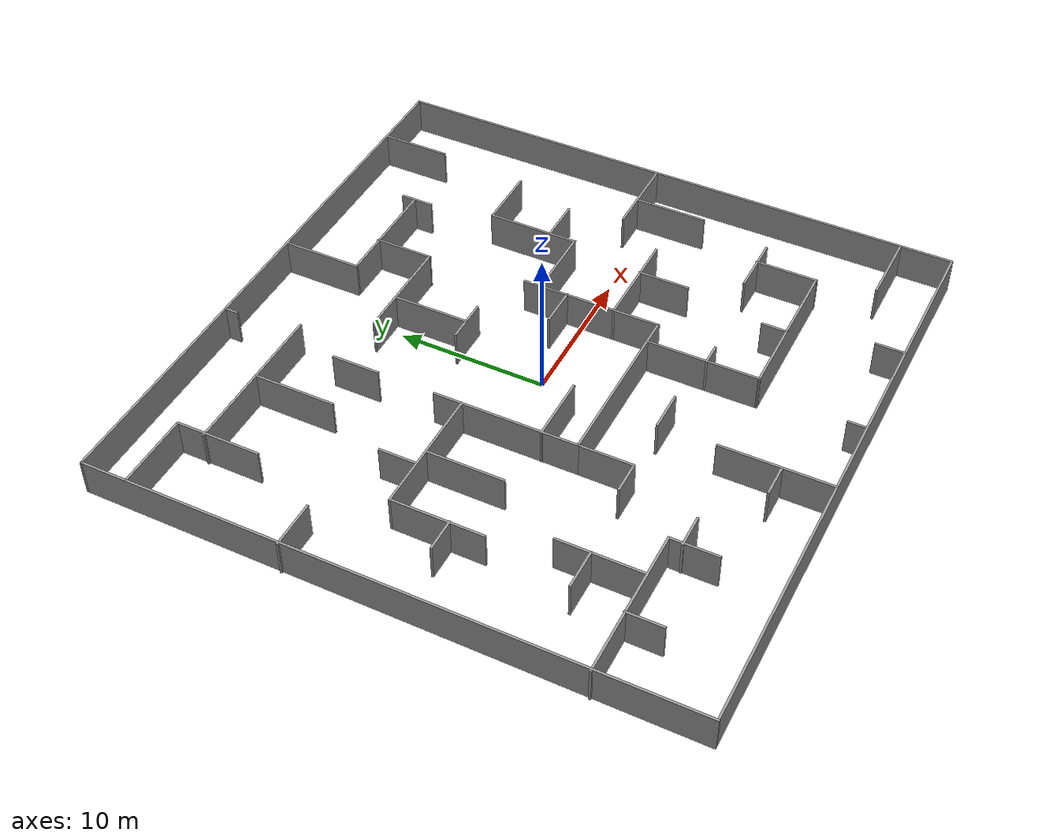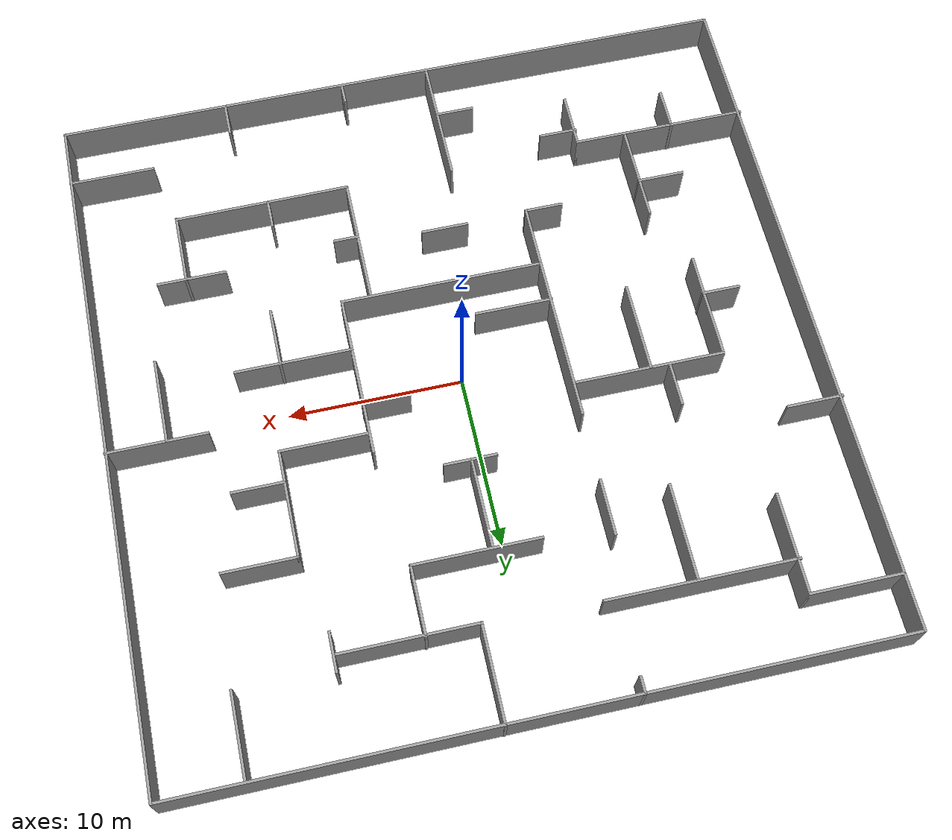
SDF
<sdf version="1.7">
 <world name="default">
  <model name="Big_Maze">
   <link name="Wall_0">
    <collision name="Wall_0_Collision">
     <geometry><box><size>40 0.15 2.5</size></box></geometry>
     <pose>0 0 1.25 0 -0 0</pose>
    </collision>
    <visual name="Wall_0_Visual">
     <pose>0 0 1.25 0 -0 0</pose>
     <geometry><box><size>40 0.15 2.5</size></box></geometry>
     <material>
      <script><uri>file://media/materials/scripts/gazebo.material</uri><name>Gazebo/Grey</name></script>
      <ambient>1 1 1 1</ambient>
     </material>
     <meta><layer>0</layer></meta>
    </visual>
    <pose>-19.8887 -0.018239 0 0 -0 -1.5708</pose>
   </link>
   <link name="Wall_10">
    <collision name="Wall_10_Collision">
     <geometry><box><size>5.75 0.15 2.5</size></box></geometry>
     <pose>0 0 1.25 0 -0 0</pose>
    </collision>
    <visual name="Wall_10_Visual">
     <pose>0 0 1.25 0 -0 0</pose>
     <geometry><box><size>5.75 0.15 2.5</size></box></geometry>
     <material>
      <script><uri>file://media/materials/scripts/gazebo.material</uri><name>Gazebo/Grey</name></script>
      <ambient>1 1 1 1</ambient>
     </material>
     <meta><layer>0</layer></meta>
    </visual>
    <pose>-14.7358 13.9709 0 0 -0 -1.5708</pose>
   </link>
   <link name="Wall_101">
    <collision name="Wall_101_Collision">
     <geometry><box><size>2.5 0.15 2.5</size></box></geometry>
     <pose>0 0 1.25 0 -0 0</pose>
    </collision>
    <visual name="Wall_101_Visual">
     <pose>0 0 1.25 0 -0 0</pose>
     <geometry><box><size>2.5 0.15 2.5</size></box></geometry>
     <material>
      <script><uri>file://media/materials/scripts/gazebo.material</uri><name>Gazebo/Grey</name></script>
      <ambient>1 1 1 1</ambient>
     </material>
     <meta><layer>0</layer></meta>
    </visual>
    <pose>-11.2738 3.7896 0 0 -0 1.5708</pose>
   </link>
   <link name="Wall_104">
    <collision name="Wall_104_Collision">
     <geometry><box><size>2.25 0.15 2.5</size></box></geometry>
     <pose>0 0 1.25 0 -0 0</pose>
    </collision>
    <visual name="Wall_104_Visual">
     <pose>0 0 1.25 0 -0 0</pose>
     <geometry><box><size>2.25 0.15 2.5</size></box></geometry>
     <material>
      <script><uri>file://media/materials/scripts/gazebo.material</uri><name>Gazebo/Grey</name></script>
      <ambient>1 1 1 1</ambient>
     </material>
     <meta><layer>0</layer></meta>
    </visual>
    <pose>-8.92761 -13.7248 0 0 -0 0</pose>
   </link>
   <link name="Wall_106">
    <collision name="Wall_106_Collision">
     <geometry><box><size>4 0.15 2.5</size></box></geometry>
     <pose>0 0 1.25 0 -0 0</pose>
    </collision>
    <visual name="Wall_106_Visual">
     <pose>0 0 1.25 0 -0 0</pose>
     <geometry><box><size>4 0.15 2.5</size></box></geometry>
     <material>
      <script><uri>file://media/materials/scripts/gazebo.material</uri><name>Gazebo/Grey</name></script>
      <ambient>1 1 1 1</ambient>
     </material>
     <meta><layer>0</layer></meta>
    </visual>
    <pose>13.9156 -8.60808 0 0 -0 0</pose>
   </link>
   <link name="Wall_111">
    <collision name="Wall_111_Collision">
     <geometry><box><size>2.25 0.15 2.5</size></box></geometry>
     <pose>0 0 1.25 0 -0 0</pose>
    </collision>
    <visual name="Wall_111_Visual">
     <pose>0 0 1.25 0 -0 0</pose>
     <geometry><box><size>2.25 0.15 2.5</size></box></geometry>
     <material>
      <script><uri>file://media/materials/scripts/gazebo.material</uri><name>Gazebo/Grey</name></script>
      <ambient>1 1 1 1</ambient>
     </material>
     <meta><layer>0</layer></meta>
    </visual>
    <pose>9.9435 14.4359 0 0 -0 -1.5708</pose>
   </link>
   <link name="Wall_113">
    <collision name="Wall_113_Collision">
     <geometry><box><size>3 0.15 2.5</size></box></geometry>
     <pose>0 0 1.25 0 -0 0</pose>
    </collision>
    <visual name="Wall_113_Visual">
     <pose>0 0 1.25 0 -0 0</pose>
     <geometry><box><size>3 0.15 2.5</size></box></geometry>
     <material>
      <script><uri>file://media/materials/scripts/gazebo.material</uri><name>Gazebo/Grey</name></script>
      <ambient>1 1 1 1</ambient>
     </material>
     <meta><layer>0</layer></meta>
    </visual>
    <pose>0.793938 5.68464 0 0 -0 0</pose>
   </link>
   <link name="Wall_115">
    <collision name="Wall_115_Collision">
     <geometry><box><size>2.75 0.15 2.5</size></box></geometry>
     <pose>0 0 1.25 0 -0 0</pose>
    </collision>
    <visual name="Wall_115_Visual">
     <pose>0 0 1.25 0 -0 0</pose>
     <geometry><box><size>2.75 0.15 2.5</size></box></geometry>
     <material>
      <script><uri>file://media/materials/scripts/gazebo.material</uri><name>Gazebo/Grey</name></script>
      <ambient>1 1 1 1</ambient>
     </material>
     <meta><layer>0</layer></meta>
    </visual>
    <pose>-14.1089 -9.42675 0 0 -0 3.14159</pose>
   </link>
   <link name="Wall_12">
    <collision name="Wall_12_Collision">
     <geometry><box><size>9.75 0.15 2.5</size></box></geometry>
     <pose>0 0 1.25 0 -0 0</pose>
    </collision>
    <visual name="Wall_12_Visual">
     <pose>0 0 1.25 0 -0 0</pose>
     <geometry><box><size>9.75 0.15 2.5</size></box></geometry>
     <material>
      <script><uri>file://media/materials/scripts/gazebo.material</uri><name>Gazebo/Grey</name></script>
      <ambient>1 1 1 1</ambient>
     </material>
     <meta><layer>0</layer></meta>
    </visual>
    <pose>-5.7819 -0.456477 0 0 -0 -1.5708</pose>
   </link>
   <link name="Wall_14">
    <collision name="Wall_14_Collision">
     <geometry><box><size>9.5 0.15 2.5</size></box></geometry>
     <pose>0 0 1.25 0 -0 0</pose>
    </collision>
    <visual name="Wall_14_Visual">
     <pose>0 0 1.25 0 -0 0</pose>
     <geometry><box><size>9.5 0.15 2.5</size></box></geometry>
     <material>
      <script><uri>file://media/materials/scripts/gazebo.material</uri><name>Gazebo/Grey</name></script>
      <ambient>1 1 1 1</ambient>
     </material>
     <meta><layer>0</layer></meta>
    </visual>
    <pose>5.8181 -0.581477 0 0 -0 1.5708</pose>
   </link>
   <link name="Wall_16">
    <collision name="Wall_16_Collision">
     <geometry><box><size>8.75 0.15 2.5</size></box></geometry>
     <pose>0 0 1.25 0 -0 0</pose>
    </collision>
    <visual name="Wall_16_Visual">
     <pose>0 0 1.25 0 -0 0</pose>
     <geometry><box><size>8.75 0.15 2.5</size></box></geometry>
     <material>
      <script><uri>file://media/materials/scripts/gazebo.material</uri><name>Gazebo/Grey</name></script>
      <ambient>1 1 1 1</ambient>
     </material>
     <meta><layer>0</layer></meta>
    </visual>
    <pose>-10.0819 2.47816 0 0 -0 3.14159</pose>
   </link>
   <link name="Wall_17">
    <collision name="Wall_17_Collision">
     <geometry><box><size>6.25 0.15 2.5</size></box></geometry>
     <pose>0 0 1.25 0 -0 0</pose>
    </collision>
    <visual name="Wall_17_Visual">
     <pose>0 0 1.25 0 -0 0</pose>
     <geometry><box><size>6.25 0.15 2.5</size></box></geometry>
     <material>
      <script><uri>file://media/materials/scripts/gazebo.material</uri><name>Gazebo/Grey</name></script>
      <ambient>1 1 1 1</ambient>
     </material>
     <meta><layer>0</layer></meta>
    </visual>
    <pose>-14.3819 -0.571842 0 0 -0 -1.5708</pose>
   </link>
   <link name="Wall_19">
    <collision name="Wall_19_Collision">
     <geometry><box><size>10.75 0.15 2.5</size></box></geometry>
     <pose>0 0 1.25 0 -0 0</pose>
    </collision>
    <visual name="Wall_19_Visual">
     <pose>0 0 1.25 0 -0 0</pose>
     <geometry><box><size>10.75 0.15 2.5</size></box></geometry>
     <material>
      <script><uri>file://media/materials/scripts/gazebo.material</uri><name>Gazebo/Grey</name></script>
      <ambient>1 1 1 1</ambient>
     </material>
     <meta><layer>0</layer></meta>
    </visual>
    <pose>-9.55555 14.8265 0 0 -0 0</pose>
   </link>
   <link name="Wall_2">
    <collision name="Wall_2_Collision">
     <geometry><box><size>40 0.15 2.5</size></box></geometry>
     <pose>0 0 1.25 0 -0 0</pose>
    </collision>
    <visual name="Wall_2_Visual">
     <pose>0 0 1.25 0 -0 0</pose>
     <geometry><box><size>40 0.15 2.5</size></box></geometry>
     <material>
      <script><uri>file://media/materials/scripts/gazebo.material</uri><name>Gazebo/Grey</name></script>
      <ambient>1 1 1 1</ambient>
     </material>
     <meta><layer>0</layer></meta>
    </visual>
    <pose>0.036259 19.9068 0 0 -0 0</pose>
   </link>
   <link name="Wall_21">
    <collision name="Wall_21_Collision">
     <geometry><box><size>5.25 0.15 2.5</size></box></geometry>
     <pose>0 0 1.25 0 -0 0</pose>
    </collision>
    <visual name="Wall_21_Visual">
     <pose>0 0 1.25 0 -0 0</pose>
     <geometry><box><size>5.25 0.15 2.5</size></box></geometry>
     <material>
      <script><uri>file://media/materials/scripts/gazebo.material</uri><name>Gazebo/Grey</name></script>
      <ambient>1 1 1 1</ambient>
     </material>
     <meta><layer>0</layer></meta>
    </visual>
    <pose>-10.1823 -0.105954 0 0 -0 -1.5708</pose>
   </link>
   <link name="Wall_25">
    <collision name="Wall_25_Collision">
     <geometry><box><size>2.25 0.15 2.5</size></box></geometry>
     <pose>0 0 1.25 0 -0 0</pose>
    </collision>
    <visual name="Wall_25_Visual">
     <pose>0 0 1.25 0 -0 0</pose>
     <geometry><box><size>2.25 0.15 2.5</size></box></geometry>
     <material>
      <script><uri>file://media/materials/scripts/gazebo.material</uri><name>Gazebo/Grey</name></script>
      <ambient>1 1 1 1</ambient>
     </material>
     <meta><layer>0</layer></meta>
    </visual>
    <pose>-15.3939 -1.37644 0 0 -0 3.14159</pose>
   </link>
   <link name="Wall_27">
    <collision name="Wall_27_Collision">
     <geometry><box><size>4.5 0.15 2.5</size></box></geometry>
     <pose>0 0 1.25 0 -0 0</pose>
    </collision>
    <visual name="Wall_27_Visual">
     <pose>0 0 1.25 0 -0 0</pose>
     <geometry><box><size>4.5 0.15 2.5</size></box></geometry>
     <material>
      <script><uri>file://media/materials/scripts/gazebo.material</uri><name>Gazebo/Grey</name></script>
      <ambient>1 1 1 1</ambient>
     </material>
     <meta><layer>0</layer></meta>
    </visual>
    <pose>-3.64101 -2.87735 0 0 -0 0</pose>
   </link>
   <link name="Wall_29">
    <collision name="Wall_29_Collision">
     <geometry><box><size>11.75 0.15 2.5</size></box></geometry>
     <pose>0 0 1.25 0 -0 0</pose>
    </collision>
    <visual name="Wall_29_Visual">
     <pose>0 0 1.25 0 -0 0</pose>
     <geometry><box><size>11.75 0.15 2.5</size></box></geometry>
     <material>
      <script><uri>file://media/materials/scripts/gazebo.material</uri><name>Gazebo/Grey</name></script>
      <ambient>1 1 1 1</ambient>
     </material>
     <meta><layer>0</layer></meta>
    </visual>
    <pose>0.018103 -5.25648 0 0 -0 0</pose>
   </link>
   <link name="Wall_31">
    <collision name="Wall_31_Collision">
     <geometry><box><size>5.5 0.15 2.5</size></box></geometry>
     <pose>0 0 1.25 0 -0 0</pose>
    </collision>
    <visual name="Wall_31_Visual">
     <pose>0 0 1.25 0 -0 0</pose>
     <geometry><box><size>5.5 0.15 2.5</size></box></geometry>
     <material>
      <script><uri>file://media/materials/scripts/gazebo.material</uri><name>Gazebo/Grey</name></script>
      <ambient>1 1 1 1</ambient>
     </material>
     <meta><layer>0</layer></meta>
    </visual>
    <pose>-9.29538 12.0833 0 0 -0 -1.5708</pose>
   </link>
   <link name="Wall_33">
    <collision name="Wall_33_Collision">
     <geometry><box><size>5 0.15 2.5</size></box></geometry>
     <pose>0 0 1.25 0 -0 0</pose>
    </collision>
    <visual name="Wall_33_Visual">
     <pose>0 0 1.25 0 -0 0</pose>
     <geometry><box><size>5 0.15 2.5</size></box></geometry>
     <material>
      <script><uri>file://media/materials/scripts/gazebo.material</uri><name>Gazebo/Grey</name></script>
      <ambient>1 1 1 1</ambient>
     </material>
     <meta><layer>0</layer></meta>
    </visual>
    <pose>8.37745 2.98983 0 0 -0 0</pose>
   </link>
   <link name="Wall_34">
    <collision name="Wall_34_Collision">
     <geometry><box><size>6.25 0.15 2.5</size></box></geometry>
     <pose>0 0 1.25 0 -0 0</pose>
    </collision>
    <visual name="Wall_34_Visual">
     <pose>0 0 1.25 0 -0 0</pose>
     <geometry><box><size>6.25 0.15 2.5</size></box></geometry>
     <material>
      <script><uri>file://media/materials/scripts/gazebo.material</uri><name>Gazebo/Grey</name></script>
      <ambient>1 1 1 1</ambient>
     </material>
     <meta><layer>0</layer></meta>
    </visual>
    <pose>10.8025 6.03983 0 0 -0 1.5708</pose>
   </link>
   <link name="Wall_35">
    <collision name="Wall_35_Collision">
     <geometry><box><size>4.25 0.15 2.5</size></box></geometry>
     <pose>0 0 1.25 0 -0 0</pose>
    </collision>
    <visual name="Wall_35_Visual">
     <pose>0 0 1.25 0 -0 0</pose>
     <geometry><box><size>4.25 0.15 2.5</size></box></geometry>
     <material>
      <script><uri>file://media/materials/scripts/gazebo.material</uri><name>Gazebo/Grey</name></script>
      <ambient>1 1 1 1</ambient>
     </material>
     <meta><layer>0</layer></meta>
    </visual>
    <pose>12.8525 9.08983 0 0 -0 0</pose>
   </link>
   <link name="Wall_37">
    <collision name="Wall_37_Collision">
     <geometry><box><size>10.25 0.15 2.5</size></box></geometry>
     <pose>0 0 1.25 0 -0 0</pose>
    </collision>
    <visual name="Wall_37_Visual">
     <pose>0 0 1.25 0 -0 0</pose>
     <geometry><box><size>10.25 0.15 2.5</size></box></geometry>
     <material>
      <script><uri>file://media/materials/scripts/gazebo.material</uri><name>Gazebo/Grey</name></script>
      <ambient>1 1 1 1</ambient>
     </material>
     <meta><layer>0</layer></meta>
    </visual>
    <pose>-14.9564 -12.8379 0 0 -0 0</pose>
   </link>
   <link name="Wall_38">
    <collision name="Wall_38_Collision">
     <geometry><box><size>3.25 0.15 2.5</size></box></geometry>
     <pose>0 0 1.25 0 -0 0</pose>
    </collision>
    <visual name="Wall_38_Visual">
     <pose>0 0 1.25 0 -0 0</pose>
     <geometry><box><size>3.25 0.15 2.5</size></box></geometry>
     <material>
      <script><uri>file://media/materials/scripts/gazebo.material</uri><name>Gazebo/Grey</name></script>
      <ambient>1 1 1 1</ambient>
     </material>
     <meta><layer>0</layer></meta>
    </visual>
    <pose>-9.90639 -14.3879 0 0 -0 -1.5708</pose>
   </link>
   <link name="Wall_4">
    <collision name="Wall_4_Collision">
     <geometry><box><size>40 0.15 2.5</size></box></geometry>
     <pose>0 0 1.25 0 -0 0</pose>
    </collision>
    <visual name="Wall_4_Visual">
     <pose>0 0 1.25 0 -0 0</pose>
     <geometry><box><size>40 0.15 2.5</size></box></geometry>
     <material>
      <script><uri>file://media/materials/scripts/gazebo.material</uri><name>Gazebo/Grey</name></script>
      <ambient>1 1 1 1</ambient>
     </material>
     <meta><layer>0</layer></meta>
    </visual>
    <pose>19.9613 -0.018239 0 0 -0 -1.5708</pose>
   </link>
   <link name="Wall_40">
    <collision name="Wall_40_Collision">
     <geometry><box><size>5.75 0.15 2.5</size></box></geometry>
     <pose>0 0 1.25 0 -0 0</pose>
    </collision>
    <visual name="Wall_40_Visual">
     <pose>0 0 1.25 0 -0 0</pose>
     <geometry><box><size>5.75 0.15 2.5</size></box></geometry>
     <material>
      <script><uri>file://media/materials/scripts/gazebo.material</uri><name>Gazebo/Grey</name></script>
      <ambient>1 1 1 1</ambient>
     </material>
     <meta><layer>0</layer></meta>
    </visual>
    <pose>-12.8089 -10.0038 0 0 -0 1.5708</pose>
   </link>
   <link name="Wall_42">
    <collision name="Wall_42_Collision">
     <geometry><box><size>3 0.15 2.5</size></box></geometry>
     <pose>0 0 1.25 0 -0 0</pose>
    </collision>
    <visual name="Wall_42_Visual">
     <pose>0 0 1.25 0 -0 0</pose>
     <geometry><box><size>3 0.15 2.5</size></box></geometry>
     <material>
      <script><uri>file://media/materials/scripts/gazebo.material</uri><name>Gazebo/Grey</name></script>
      <ambient>1 1 1 1</ambient>
     </material>
     <meta><layer>0</layer></meta>
    </visual>
    <pose>12.2554 4.79774 0 0 -0 0</pose>
   </link>
   <link name="Wall_44">
    <collision name="Wall_44_Collision">
     <geometry><box><size>6.75 0.15 2.5</size></box></geometry>
     <pose>0 0 1.25 0 -0 0</pose>
    </collision>
    <visual name="Wall_44_Visual">
     <pose>0 0 1.25 0 -0 0</pose>
     <geometry><box><size>6.75 0.15 2.5</size></box></geometry>
     <material>
      <script><uri>file://media/materials/scripts/gazebo.material</uri><name>Gazebo/Grey</name></script>
      <ambient>1 1 1 1</ambient>
     </material>
     <meta><layer>0</layer></meta>
    </visual>
    <pose>9.11601 -2.19512 0 0 -0 0</pose>
   </link>
   <link name="Wall_46">
    <collision name="Wall_46_Collision">
     <geometry><box><size>7.5 0.15 2.5</size></box></geometry>
     <pose>0 0 1.25 0 -0 0</pose>
    </collision>
    <visual name="Wall_46_Visual">
     <pose>0 0 1.25 0 -0 0</pose>
     <geometry><box><size>7.5 0.15 2.5</size></box></geometry>
     <material>
      <script><uri>file://media/materials/scripts/gazebo.material</uri><name>Gazebo/Grey</name></script>
      <ambient>1 1 1 1</ambient>
     </material>
     <meta><layer>0</layer></meta>
    </visual>
    <pose>4.14455 -9.04248 0 0 -0 -1.5708</pose>
   </link>
   <link name="Wall_47">
    <collision name="Wall_47_Collision">
     <geometry><box><size>10.25 0.15 2.5</size></box></geometry>
     <pose>0 0 1.25 0 -0 0</pose>
    </collision>
    <visual name="Wall_47_Visual">
     <pose>0 0 1.25 0 -0 0</pose>
     <geometry><box><size>10.25 0.15 2.5</size></box></geometry>
     <material>
      <script><uri>file://media/materials/scripts/gazebo.material</uri><name>Gazebo/Grey</name></script>
      <ambient>1 1 1 1</ambient>
     </material>
     <meta><layer>0</layer></meta>
    </visual>
    <pose>9.19455 -12.6834 0 0 -0 0.006755</pose>
   </link>
   <link name="Wall_48">
    <collision name="Wall_48_Collision">
     <geometry><box><size>4.25 0.15 2.5</size></box></geometry>
     <pose>0 0 1.25 0 -0 0</pose>
    </collision>
    <visual name="Wall_48_Visual">
     <pose>0 0 1.25 0 -0 0</pose>
     <geometry><box><size>4.25 0.15 2.5</size></box></geometry>
     <material>
      <script><uri>file://media/materials/scripts/gazebo.material</uri><name>Gazebo/Grey</name></script>
      <ambient>1 1 1 1</ambient>
     </material>
     <meta><layer>0</layer></meta>
    </visual>
    <pose>14.2445 -10.6334 0 0 -0 1.5708</pose>
   </link>
   <link name="Wall_50">
    <collision name="Wall_50_Collision">
     <geometry><box><size>5.5 0.15 2.5</size></box></geometry>
     <pose>0 0 1.25 0 -0 0</pose>
    </collision>
    <visual name="Wall_50_Visual">
     <pose>0 0 1.25 0 -0 0</pose>
     <geometry><box><size>5.5 0.15 2.5</size></box></geometry>
     <material>
      <script><uri>file://media/materials/scripts/gazebo.material</uri><name>Gazebo/Grey</name></script>
      <ambient>1 1 1 1</ambient>
     </material>
     <meta><layer>0</layer></meta>
    </visual>
    <pose>2.20019 17.2682 0 0 -0 -1.5708</pose>
   </link>
   <link name="Wall_51">
    <collision name="Wall_51_Collision">
     <geometry><box><size>7.75 0.15 2.5</size></box></geometry>
     <pose>0 0 1.25 0 -0 0</pose>
    </collision>
    <visual name="Wall_51_Visual">
     <pose>0 0 1.25 0 -0 0</pose>
     <geometry><box><size>7.75 0.15 2.5</size></box></geometry>
     <material>
      <script><uri>file://media/materials/scripts/gazebo.material</uri><name>Gazebo/Grey</name></script>
      <ambient>1 1 1 1</ambient>
     </material>
     <meta><layer>0</layer></meta>
    </visual>
    <pose>6.00019 14.5932 0 0 -0 0</pose>
   </link>
   <link name="Wall_53">
    <collision name="Wall_53_Collision">
     <geometry><box><size>7.5 0.15 2.5</size></box></geometry>
     <pose>0 0 1.25 0 -0 0</pose>
    </collision>
    <visual name="Wall_53_Visual">
     <pose>0 0 1.25 0 -0 0</pose>
     <geometry><box><size>7.5 0.15 2.5</size></box></geometry>
     <material>
      <script><uri>file://media/materials/scripts/gazebo.material</uri><name>Gazebo/Grey</name></script>
      <ambient>1 1 1 1</ambient>
     </material>
     <meta><layer>0</layer></meta>
    </visual>
    <pose>-2.13197 -16.224 0 0 -0 1.5708</pose>
   </link>
   <link name="Wall_55">
    <collision name="Wall_55_Collision">
     <geometry><box><size>2 0.15 2.5</size></box></geometry>
     <pose>0 0 1.25 0 -0 0</pose>
    </collision>
    <visual name="Wall_55_Visual">
     <pose>0 0 1.25 0 -0 0</pose>
     <geometry><box><size>2 0.15 2.5</size></box></geometry>
     <material>
      <script><uri>file://media/materials/scripts/gazebo.material</uri><name>Gazebo/Grey</name></script>
      <ambient>1 1 1 1</ambient>
     </material>
     <meta><layer>0</layer></meta>
    </visual>
    <pose>10.2846 -18.974 0 0 -0 1.5708</pose>
   </link>
   <link name="Wall_57">
    <collision name="Wall_57_Collision">
     <geometry><box><size>4.75 0.15 2.5</size></box></geometry>
     <pose>0 0 1.25 0 -0 0</pose>
    </collision>
    <visual name="Wall_57_Visual">
     <pose>0 0 1.25 0 -0 0</pose>
     <geometry><box><size>4.75 0.15 2.5</size></box></geometry>
     <material>
      <script><uri>file://media/materials/scripts/gazebo.material</uri><name>Gazebo/Grey</name></script>
      <ambient>1 1 1 1</ambient>
     </material>
     <meta><layer>0</layer></meta>
    </visual>
    <pose>15.299 17.575 0 0 -0 -1.5708</pose>
   </link>
   <link name="Wall_59">
    <collision name="Wall_59_Collision">
     <geometry><box><size>7.25 0.15 2.5</size></box></geometry>
     <pose>0 0 1.25 0 -0 0</pose>
    </collision>
    <visual name="Wall_59_Visual">
     <pose>0 0 1.25 0 -0 0</pose>
     <geometry><box><size>7.25 0.15 2.5</size></box></geometry>
     <material>
      <script><uri>file://media/materials/scripts/gazebo.material</uri><name>Gazebo/Grey</name></script>
      <ambient>1 1 1 1</ambient>
     </material>
     <meta><layer>0</layer></meta>
    </visual>
    <pose>1.59845 10.8014 0 0 -0 0</pose>
   </link>
   <link name="Wall_60">
    <collision name="Wall_60_Collision">
     <geometry><box><size>4 0.15 2.5</size></box></geometry>
     <pose>0 0 1.25 0 -0 0</pose>
    </collision>
    <visual name="Wall_60_Visual">
     <pose>0 0 1.25 0 -0 0</pose>
     <geometry><box><size>4 0.15 2.5</size></box></geometry>
     <material>
      <script><uri>file://media/materials/scripts/gazebo.material</uri><name>Gazebo/Grey</name></script>
      <ambient>1 1 1 1</ambient>
     </material>
     <meta><layer>0</layer></meta>
    </visual>
    <pose>5.14845 12.7264 0 0 -0 1.5708</pose>
   </link>
   <link name="Wall_62">
    <collision name="Wall_62_Collision">
     <geometry><box><size>2.75 0.15 2.5</size></box></geometry>
     <pose>0 0 1.25 0 -0 0</pose>
    </collision>
    <visual name="Wall_62_Visual">
     <pose>0 0 1.25 0 -0 0</pose>
     <geometry><box><size>2.75 0.15 2.5</size></box></geometry>
     <material>
      <script><uri>file://media/materials/scripts/gazebo.material</uri><name>Gazebo/Grey</name></script>
      <ambient>1 1 1 1</ambient>
     </material>
     <meta><layer>0</layer></meta>
    </visual>
    <pose>4.55012 1.1137 0 0 -0 3.14159</pose>
   </link>
   <link name="Wall_64">
    <collision name="Wall_64_Collision">
     <geometry><box><size>3.5 0.15 2.5</size></box></geometry>
     <pose>0 0 1.25 0 -0 0</pose>
    </collision>
    <visual name="Wall_64_Visual">
     <pose>0 0 1.25 0 -0 0</pose>
     <geometry><box><size>3.5 0.15 2.5</size></box></geometry>
     <material>
      <script><uri>file://media/materials/scripts/gazebo.material</uri><name>Gazebo/Grey</name></script>
      <ambient>1 1 1 1</ambient>
     </material>
     <meta><layer>0</layer></meta>
    </visual>
    <pose>9.87528 -3.83601 0 0 -0 -1.5708</pose>
   </link>
   <link name="Wall_66">
    <collision name="Wall_66_Collision">
     <geometry><box><size>1.25 0.15 2.5</size></box></geometry>
     <pose>0 0 1.25 0 -0 0</pose>
    </collision>
    <visual name="Wall_66_Visual">
     <pose>0 0 1.25 0 -0 0</pose>
     <geometry><box><size>1.25 0.15 2.5</size></box></geometry>
     <material>
      <script><uri>file://media/materials/scripts/gazebo.material</uri><name>Gazebo/Grey</name></script>
      <ambient>1 1 1 1</ambient>
     </material>
     <meta><layer>0</layer></meta>
    </visual>
    <pose>3.1212 -19.3149 0 0 -0 1.5708</pose>
   </link>
   <link name="Wall_68">
    <collision name="Wall_68_Collision">
     <geometry><box><size>3.75 0.15 2.5</size></box></geometry>
     <pose>0 0 1.25 0 -0 0</pose>
    </collision>
    <visual name="Wall_68_Visual">
     <pose>0 0 1.25 0 -0 0</pose>
     <geometry><box><size>3.75 0.15 2.5</size></box></geometry>
     <material>
      <script><uri>file://media/materials/scripts/gazebo.material</uri><name>Gazebo/Grey</name></script>
      <ambient>1 1 1 1</ambient>
     </material>
     <meta><layer>0</layer></meta>
    </visual>
    <pose>-5.7819 -7.05648 0 0 -0 -1.5708</pose>
   </link>
   <link name="Wall_69">
    <collision name="Wall_69_Collision">
     <geometry><box><size>2.25 0.15 2.5</size></box></geometry>
     <pose>0 0 1.25 0 -0 0</pose>
    </collision>
    <visual name="Wall_69_Visual">
     <pose>0 0 1.25 0 -0 0</pose>
     <geometry><box><size>2.25 0.15 2.5</size></box></geometry>
     <material>
      <script><uri>file://media/materials/scripts/gazebo.material</uri><name>Gazebo/Grey</name></script>
      <ambient>1 1 1 1</ambient>
     </material>
     <meta><layer>0</layer></meta>
    </visual>
    <pose>-6.8319 -8.85648 0 0 -0 3.14159</pose>
   </link>
   <link name="Wall_7">
    <collision name="Wall_7_Collision">
     <geometry><box><size>40 0.15 2.5</size></box></geometry>
     <pose>0 0 1.25 0 -0 0</pose>
    </collision>
    <visual name="Wall_7_Visual">
     <pose>0 0 1.25 0 -0 0</pose>
     <geometry><box><size>40 0.15 2.5</size></box></geometry>
     <material>
      <script><uri>file://media/materials/scripts/gazebo.material</uri><name>Gazebo/Grey</name></script>
      <ambient>1 1 1 1</ambient>
     </material>
     <meta><layer>0</layer></meta>
    </visual>
    <pose>0.036259 -19.9432 0 0 -0 0</pose>
   </link>
   <link name="Wall_71">
    <collision name="Wall_71_Collision">
     <geometry><box><size>1.75 0.15 2.5</size></box></geometry>
     <pose>0 0 1.25 0 -0 0</pose>
    </collision>
    <visual name="Wall_71_Visual">
     <pose>0 0 1.25 0 -0 0</pose>
     <geometry><box><size>1.75 0.15 2.5</size></box></geometry>
     <material>
      <script><uri>file://media/materials/scripts/gazebo.material</uri><name>Gazebo/Grey</name></script>
      <ambient>1 1 1 1</ambient>
     </material>
     <meta><layer>0</layer></meta>
    </visual>
    <pose>8.85193 -11.8673 0 0 -0 1.5708</pose>
   </link>
   <link name="Wall_73">
    <collision name="Wall_73_Collision">
     <geometry><box><size>5.21589 0.15 2.5</size></box></geometry>
     <pose>0 0 1.25 0 -0 0</pose>
    </collision>
    <visual name="Wall_73_Visual">
     <pose>0 0 1.25 0 -0 0</pose>
     <geometry><box><size>5.21589 0.15 2.5</size></box></geometry>
     <material>
      <script><uri>file://media/materials/scripts/gazebo.material</uri><name>Gazebo/Grey</name></script>
      <ambient>1 1 1 1</ambient>
     </material>
     <meta><layer>0</layer></meta>
    </visual>
    <pose>0.733397 8.26842 0 0 -0 -1.5708</pose>
   </link>
   <link name="Wall_78">
    <collision name="Wall_78_Collision">
     <geometry><box><size>2.5 0.15 2.5</size></box></geometry>
     <pose>0 0 1.25 0 -0 0</pose>
    </collision>
    <visual name="Wall_78_Visual">
     <pose>0 0 1.25 0 -0 0</pose>
     <geometry><box><size>2.5 0.15 2.5</size></box></geometry>
     <material>
      <script><uri>file://media/materials/scripts/gazebo.material</uri><name>Gazebo/Grey</name></script>
      <ambient>1 1 1 1</ambient>
     </material>
     <meta><layer>0</layer></meta>
    </visual>
    <pose>-15.7083 -13.9788 0 0 -0 -1.5708</pose>
   </link>
   <link name="Wall_80">
    <collision name="Wall_80_Collision">
     <geometry><box><size>3.25 0.15 2.5</size></box></geometry>
     <pose>0 0 1.25 0 -0 0</pose>
    </collision>
    <visual name="Wall_80_Visual">
     <pose>0 0 1.25 0 -0 0</pose>
     <geometry><box><size>3.25 0.15 2.5</size></box></geometry>
     <material>
      <script><uri>file://media/materials/scripts/gazebo.material</uri><name>Gazebo/Grey</name></script>
      <ambient>1 1 1 1</ambient>
     </material>
     <meta><layer>0</layer></meta>
    </visual>
    <pose>-18.4564 6.40098 0 0 -0 0</pose>
   </link>
   <link name="Wall_82">
    <collision name="Wall_82_Collision">
     <geometry><box><size>5.75 0.15 2.5</size></box></geometry>
     <pose>0 0 1.25 0 -0 0</pose>
    </collision>
    <visual name="Wall_82_Visual">
     <pose>0 0 1.25 0 -0 0</pose>
     <geometry><box><size>5.75 0.15 2.5</size></box></geometry>
     <material>
      <script><uri>file://media/materials/scripts/gazebo.material</uri><name>Gazebo/Grey</name></script>
      <ambient>1 1 1 1</ambient>
     </material>
     <meta><layer>0</layer></meta>
    </visual>
    <pose>17.2064 1.07959 0 0 -0 3.14159</pose>
   </link>
   <link name="Wall_84">
    <collision name="Wall_84_Collision">
     <geometry><box><size>5 0.15 2.5</size></box></geometry>
     <pose>0 0 1.25 0 -0 0</pose>
    </collision>
    <visual name="Wall_84_Visual">
     <pose>0 0 1.25 0 -0 0</pose>
     <geometry><box><size>5 0.15 2.5</size></box></geometry>
     <material>
      <script><uri>file://media/materials/scripts/gazebo.material</uri><name>Gazebo/Grey</name></script>
      <ambient>1 1 1 1</ambient>
     </material>
     <meta><layer>0</layer></meta>
    </visual>
    <pose>16.6635 -1.34541 0 0 -0 -1.5708</pose>
   </link>
   <link name="Wall_86">
    <collision name="Wall_86_Collision">
     <geometry><box><size>1 0.15 2.5</size></box></geometry>
     <pose>0 0 1.25 0 -0 0</pose>
    </collision>
    <visual name="Wall_86_Visual">
     <pose>0 0 1.25 0 -0 0</pose>
     <geometry><box><size>1 0.15 2.5</size></box></geometry>
     <material>
      <script><uri>file://media/materials/scripts/gazebo.material</uri><name>Gazebo/Grey</name></script>
      <ambient>1 1 1 1</ambient>
     </material>
     <meta><layer>0</layer></meta>
    </visual>
    <pose>-5.03144 19.4841 0 0 -0 -1.5708</pose>
   </link>
   <link name="Wall_88">
    <collision name="Wall_88_Collision">
     <geometry><box><size>5 0.15 2.5</size></box></geometry>
     <pose>0 0 1.25 0 -0 0</pose>
    </collision>
    <visual name="Wall_88_Visual">
     <pose>0 0 1.25 0 -0 0</pose>
     <geometry><box><size>5 0.15 2.5</size></box></geometry>
     <material>
      <script><uri>file://media/materials/scripts/gazebo.material</uri><name>Gazebo/Grey</name></script>
      <ambient>1 1 1 1</ambient>
     </material>
     <meta><layer>0</layer></meta>
    </visual>
    <pose>17.5534 -16.4537 0 0 -0 0</pose>
   </link>
   <link name="Wall_9">
    <collision name="Wall_9_Collision">
     <geometry><box><size>5.25 0.15 2.5</size></box></geometry>
     <pose>0 0 1.25 0 -0 0</pose>
    </collision>
    <visual name="Wall_9_Visual">
     <pose>0 0 1.25 0 -0 0</pose>
     <geometry><box><size>5.25 0.15 2.5</size></box></geometry>
     <material>
      <script><uri>file://media/materials/scripts/gazebo.material</uri><name>Gazebo/Grey</name></script>
      <ambient>1 1 1 1</ambient>
     </material>
     <meta><layer>0</layer></meta>
    </visual>
    <pose>-17.2858 16.7709 0 0 -0 0</pose>
   </link>
   <link name="Wall_90">
    <collision name="Wall_90_Collision">
     <geometry><box><size>2.25 0.15 2.5</size></box></geometry>
     <pose>0 0 1.25 0 -0 0</pose>
    </collision>
    <visual name="Wall_90_Visual">
     <pose>0 0 1.25 0 -0 0</pose>
     <geometry><box><size>2.25 0.15 2.5</size></box></geometry>
     <material>
      <script><uri>file://media/materials/scripts/gazebo.material</uri><name>Gazebo/Grey</name></script>
      <ambient>1 1 1 1</ambient>
     </material>
     <meta><layer>0</layer></meta>
    </visual>
    <pose>-3.21608 -16.5902 0 0 -0 3.14159</pose>
   </link>
   <link name="Wall_93">
    <collision name="Wall_93_Collision">
     <geometry><box><size>3.25 0.15 2.5</size></box></geometry>
     <pose>0 0 1.25 0 -0 0</pose>
    </collision>
    <visual name="Wall_93_Visual">
     <pose>0 0 1.25 0 -0 0</pose>
     <geometry><box><size>3.25 0.15 2.5</size></box></geometry>
     <material>
      <script><uri>file://media/materials/scripts/gazebo.material</uri><name>Gazebo/Grey</name></script>
      <ambient>1 1 1 1</ambient>
     </material>
     <meta><layer>0</layer></meta>
    </visual>
    <pose>-5.74779 9.89948 0 0 -0 -1.5708</pose>
   </link>
   <link name="Wall_95">
    <collision name="Wall_95_Collision">
     <geometry><box><size>2.75 0.15 2.5</size></box></geometry>
     <pose>0 0 1.25 0 -0 0</pose>
    </collision>
    <visual name="Wall_95_Visual">
     <pose>0 0 1.25 0 -0 0</pose>
     <geometry><box><size>2.75 0.15 2.5</size></box></geometry>
     <material>
      <script><uri>file://media/materials/scripts/gazebo.material</uri><name>Gazebo/Grey</name></script>
      <ambient>1 1 1 1</ambient>
     </material>
     <meta><layer>0</layer></meta>
    </visual>
    <pose>-0.90019 -8.74452 0 0 -0 0</pose>
   </link>
   <link name="Wall_99">
    <collision name="Wall_99_Collision">
     <geometry><box><size>1.5 0.15 2.5</size></box></geometry>
     <pose>0 0 1.25 0 -0 0</pose>
    </collision>
    <visual name="Wall_99_Visual">
     <pose>0 0 1.25 0 -0 0</pose>
     <geometry><box><size>1.5 0.15 2.5</size></box></geometry>
     <material>
      <script><uri>file://media/materials/scripts/gazebo.material</uri><name>Gazebo/Grey</name></script>
      <ambient>1 1 1 1</ambient>
     </material>
     <meta><layer>0</layer></meta>
    </visual>
    <pose>4.81955 -9.25619 0 0 -0 0</pose>
   </link>
   <static>1</static>
  </model>
 </world>
</sdf>
